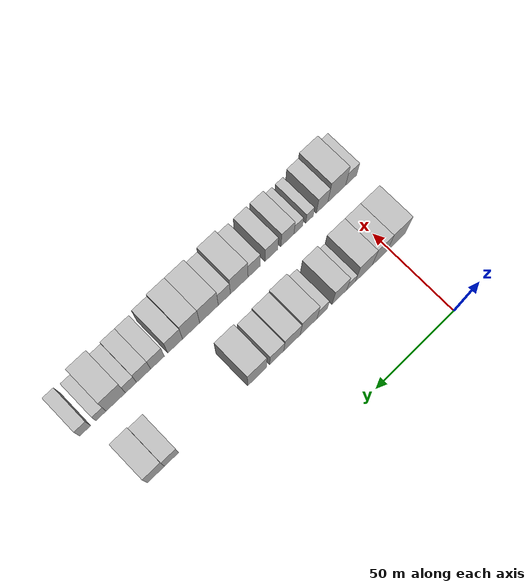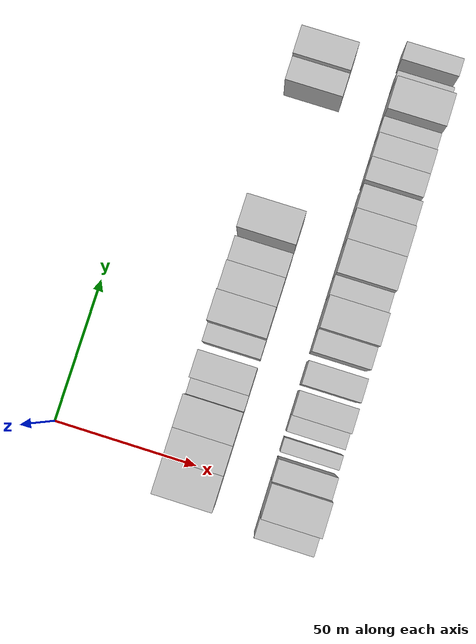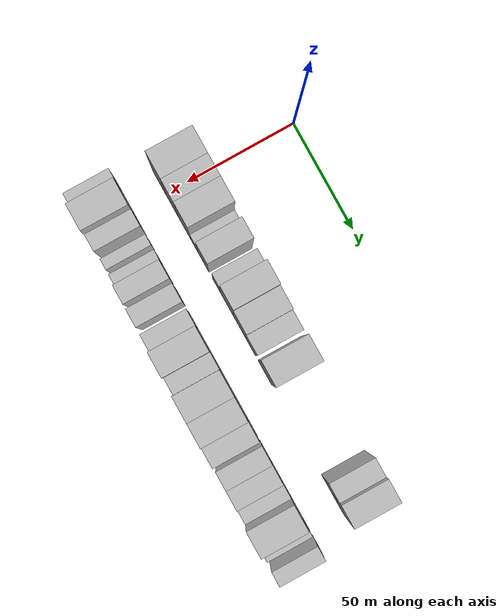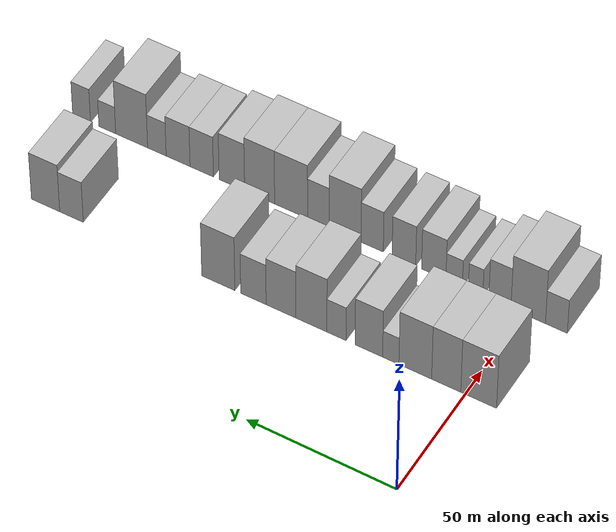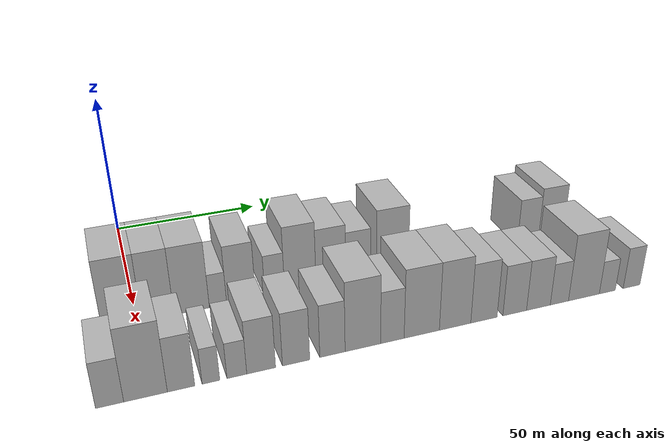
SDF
<sdf version="1.6">
 <world name="default">
  <model name="building_33">
   <static>1</static>
   <pose>50.0000 -4.4543 0 0.000000 0.000000 0.000000</pose>
   <link name="link">
    <pose>0 0 12.00 0 0 0</pose>
    <collision name="collision"><geometry><box><size>20.0000 11.8226 24.0000</size></box></geometry></collision>
    <visual name="visual">
     <cast_shadows>0</cast_shadows>
     <geometry><box><size>20.0000 11.8226 24.0000</size></box></geometry>
     <material>
      <script>
       <uri>model://HANNAS_wall/materials/scripts</uri>
       <uri>model://HANNAS_wall/materials/textures</uri>
       <name>vrc/HANNAS_wall</name>
      </script>
     </material>
    </visual>
   </link>
  </model>
  <model name="building_34">
   <static>1</static>
   <pose>50.0000 6.3101 0 0.000000 0.000000 0.000000</pose>
   <link name="link">
    <pose>0 0 12.00 0 0 0</pose>
    <collision name="collision"><geometry><box><size>20.0000 9.7060 24.0000</size></box></geometry></collision>
    <visual name="visual">
     <cast_shadows>0</cast_shadows>
     <geometry><box><size>20.0000 9.7060 24.0000</size></box></geometry>
     <material>
      <script>
       <uri>model://HANNAS_wall/materials/scripts</uri>
       <uri>model://HANNAS_wall/materials/textures</uri>
       <name>vrc/HANNAS_wall</name>
      </script>
     </material>
    </visual>
   </link>
  </model>
  <model name="building_35">
   <static>1</static>
   <pose>50.0000 16.6346 0 0.000000 0.000000 0.000000</pose>
   <link name="link">
    <pose>0 0 12.00 0 0 0</pose>
    <collision name="collision"><geometry><box><size>20.0000 10.9430 24.0000</size></box></geometry></collision>
    <visual name="visual">
     <cast_shadows>0</cast_shadows>
     <geometry><box><size>20.0000 10.9430 24.0000</size></box></geometry>
     <material>
      <script>
       <uri>model://HANNAS_wall/materials/scripts</uri>
       <uri>model://HANNAS_wall/materials/textures</uri>
       <name>vrc/HANNAS_wall</name>
      </script>
     </material>
    </visual>
   </link>
  </model>
  <model name="building_36">
   <static>1</static>
   <pose>50.0000 24.8381 0 0.000000 0.000000 0.000000</pose>
   <link name="link">
    <pose>0 0 6.00 0 0 0</pose>
    <collision name="collision"><geometry><box><size>20.0000 5.4641 12.0000</size></box></geometry></collision>
    <visual name="visual">
     <cast_shadows>0</cast_shadows>
     <geometry><box><size>20.0000 5.4641 12.0000</size></box></geometry>
     <material>
      <script>
       <uri>model://HANNAS_wall/materials/scripts</uri>
       <uri>model://HANNAS_wall/materials/textures</uri>
       <name>vrc/HANNAS_wall</name>
      </script>
     </material>
    </visual>
   </link>
  </model>
  <model name="building_37">
   <static>1</static>
   <pose>50.0000 32.2049 0 0.000000 0.000000 0.000000</pose>
   <link name="link">
    <pose>0 0 10.50 0 0 0</pose>
    <collision name="collision"><geometry><box><size>20.0000 9.2696 21.0000</size></box></geometry></collision>
    <visual name="visual">
     <cast_shadows>0</cast_shadows>
     <geometry><box><size>20.0000 9.2696 21.0000</size></box></geometry>
     <material>
      <script>
       <uri>model://HANNAS_wall/materials/scripts</uri>
       <uri>model://HANNAS_wall/materials/textures</uri>
       <name>vrc/HANNAS_wall</name>
      </script>
     </material>
    </visual>
   </link>
  </model>
  <model name="building_38">
   <static>1</static>
   <pose>50.0000 43.1029 0 0.000000 0.000000 0.000000</pose>
   <link name="link">
    <pose>0 0 7.50 0 0 0</pose>
    <collision name="collision"><geometry><box><size>20.0000 6.5264 15.0000</size></box></geometry></collision>
    <visual name="visual">
     <cast_shadows>0</cast_shadows>
     <geometry><box><size>20.0000 6.5264 15.0000</size></box></geometry>
     <material>
      <script>
       <uri>model://HANNAS_wall/materials/scripts</uri>
       <uri>model://HANNAS_wall/materials/textures</uri>
       <name>vrc/HANNAS_wall</name>
      </script>
     </material>
    </visual>
   </link>
  </model>
  <model name="building_39">
   <static>1</static>
   <pose>50.0000 51.6203 0 0.000000 0.000000 0.000000</pose>
   <link name="link">
    <pose>0 0 12.00 0 0 0</pose>
    <collision name="collision"><geometry><box><size>20.0000 10.5083 24.0000</size></box></geometry></collision>
    <visual name="visual">
     <cast_shadows>0</cast_shadows>
     <geometry><box><size>20.0000 10.5083 24.0000</size></box></geometry>
     <material>
      <script>
       <uri>model://HANNAS_wall/materials/scripts</uri>
       <uri>model://HANNAS_wall/materials/textures</uri>
       <name>vrc/HANNAS_wall</name>
      </script>
     </material>
    </visual>
   </link>
  </model>
  <model name="building_40">
   <static>1</static>
   <pose>50.0000 61.9553 0 0.000000 0.000000 0.000000</pose>
   <link name="link">
    <pose>0 0 10.50 0 0 0</pose>
    <collision name="collision"><geometry><box><size>20.0000 10.1617 21.0000</size></box></geometry></collision>
    <visual name="visual">
     <cast_shadows>0</cast_shadows>
     <geometry><box><size>20.0000 10.1617 21.0000</size></box></geometry>
     <material>
      <script>
       <uri>model://HANNAS_wall/materials/scripts</uri>
       <uri>model://HANNAS_wall/materials/textures</uri>
       <name>vrc/HANNAS_wall</name>
      </script>
     </material>
    </visual>
   </link>
  </model>
  <model name="building_41">
   <static>1</static>
   <pose>50.0000 71.3873 0 0.000000 0.000000 0.000000</pose>
   <link name="link">
    <pose>0 0 9.00 0 0 0</pose>
    <collision name="collision"><geometry><box><size>20.0000 8.7023 18.0000</size></box></geometry></collision>
    <visual name="visual">
     <cast_shadows>0</cast_shadows>
     <geometry><box><size>20.0000 8.7023 18.0000</size></box></geometry>
     <material>
      <script>
       <uri>model://HANNAS_wall/materials/scripts</uri>
       <uri>model://HANNAS_wall/materials/textures</uri>
       <name>vrc/HANNAS_wall</name>
      </script>
     </material>
    </visual>
   </link>
  </model>
  <model name="building_42">
   <static>1</static>
   <pose>50.0000 83.4444 0 0.000000 0.000000 0.000000</pose>
   <link name="link">
    <pose>0 0 12.00 0 0 0</pose>
    <collision name="collision"><geometry><box><size>20.0000 11.4119 24.0000</size></box></geometry></collision>
    <visual name="visual">
     <cast_shadows>0</cast_shadows>
     <geometry><box><size>20.0000 11.4119 24.0000</size></box></geometry>
     <material>
      <script>
       <uri>model://HANNAS_wall/materials/scripts</uri>
       <uri>model://HANNAS_wall/materials/textures</uri>
       <name>vrc/HANNAS_wall</name>
      </script>
     </material>
    </visual>
   </link>
  </model>
  <model name="building_43">
   <static>1</static>
   <pose>50.0000 134.6343 0 0.000000 0.000000 0.000000</pose>
   <link name="link">
    <pose>0 0 9.00 0 0 0</pose>
    <collision name="collision"><geometry><box><size>20.0000 8.3227 18.0000</size></box></geometry></collision>
    <visual name="visual">
     <cast_shadows>0</cast_shadows>
     <geometry><box><size>20.0000 8.3227 18.0000</size></box></geometry>
     <material>
      <script>
       <uri>model://HANNAS_wall/materials/scripts</uri>
       <uri>model://HANNAS_wall/materials/textures</uri>
       <name>vrc/HANNAS_wall</name>
      </script>
     </material>
    </visual>
   </link>
  </model>
  <model name="building_44">
   <static>1</static>
   <pose>50.0000 143.7940 0 0.000000 0.000000 0.000000</pose>
   <link name="link">
    <pose>0 0 10.50 0 0 0</pose>
    <collision name="collision"><geometry><box><size>20.0000 9.9968 21.0000</size></box></geometry></collision>
    <visual name="visual">
     <cast_shadows>0</cast_shadows>
     <geometry><box><size>20.0000 9.9968 21.0000</size></box></geometry>
     <material>
      <script>
       <uri>model://HANNAS_wall/materials/scripts</uri>
       <uri>model://HANNAS_wall/materials/textures</uri>
       <name>vrc/HANNAS_wall</name>
      </script>
     </material>
    </visual>
   </link>
  </model>
  <model name="building_90">
   <static>1</static>
   <pose>85.0000 -11.1632 0 0.000000 0.000000 0.000000</pose>
   <link name="link">
    <pose>0 0 7.50 0 0 0</pose>
    <collision name="collision"><geometry><box><size>20.0000 7.2867 15.0000</size></box></geometry></collision>
    <visual name="visual">
     <cast_shadows>0</cast_shadows>
     <geometry><box><size>20.0000 7.2867 15.0000</size></box></geometry>
     <material>
      <script>
       <uri>model://HANNAS_wall/materials/scripts</uri>
       <uri>model://HANNAS_wall/materials/textures</uri>
       <name>vrc/HANNAS_wall</name>
      </script>
     </material>
    </visual>
   </link>
  </model>
  <model name="building_91">
   <static>1</static>
   <pose>85.0000 -1.7479 0 0.000000 0.000000 0.000000</pose>
   <link name="link">
    <pose>0 0 12.00 0 0 0</pose>
    <collision name="collision"><geometry><box><size>20.0000 11.5440 24.0000</size></box></geometry></collision>
    <visual name="visual">
     <cast_shadows>0</cast_shadows>
     <geometry><box><size>20.0000 11.5440 24.0000</size></box></geometry>
     <material>
      <script>
       <uri>model://HANNAS_wall/materials/scripts</uri>
       <uri>model://HANNAS_wall/materials/textures</uri>
       <name>vrc/HANNAS_wall</name>
      </script>
     </material>
    </visual>
   </link>
  </model>
  <model name="building_92">
   <static>1</static>
   <pose>85.0000 7.7418 0 0.000000 0.000000 0.000000</pose>
   <link name="link">
    <pose>0 0 9.00 0 0 0</pose>
    <collision name="collision"><geometry><box><size>20.0000 7.4354 18.0000</size></box></geometry></collision>
    <visual name="visual">
     <cast_shadows>0</cast_shadows>
     <geometry><box><size>20.0000 7.4354 18.0000</size></box></geometry>
     <material>
      <script>
       <uri>model://HANNAS_wall/materials/scripts</uri>
       <uri>model://HANNAS_wall/materials/textures</uri>
       <name>vrc/HANNAS_wall</name>
      </script>
     </material>
    </visual>
   </link>
  </model>
  <model name="building_93">
   <static>1</static>
   <pose>85.0000 15.9081 0 0.000000 0.000000 0.000000</pose>
   <link name="link">
    <pose>0 0 6.00 0 0 0</pose>
    <collision name="collision"><geometry><box><size>20.0000 4.8971 12.0000</size></box></geometry></collision>
    <visual name="visual">
     <cast_shadows>0</cast_shadows>
     <geometry><box><size>20.0000 4.8971 12.0000</size></box></geometry>
     <material>
      <script>
       <uri>model://HANNAS_wall/materials/scripts</uri>
       <uri>model://HANNAS_wall/materials/textures</uri>
       <name>vrc/HANNAS_wall</name>
      </script>
     </material>
    </visual>
   </link>
  </model>
  <model name="building_94">
   <static>1</static>
   <pose>85.0000 23.1462 0 0.000000 0.000000 0.000000</pose>
   <link name="link">
    <pose>0 0 6.00 0 0 0</pose>
    <collision name="collision"><geometry><box><size>20.0000 5.5792 12.0000</size></box></geometry></collision>
    <visual name="visual">
     <cast_shadows>0</cast_shadows>
     <geometry><box><size>20.0000 5.5792 12.0000</size></box></geometry>
     <material>
      <script>
       <uri>model://HANNAS_wall/materials/scripts</uri>
       <uri>model://HANNAS_wall/materials/textures</uri>
       <name>vrc/HANNAS_wall</name>
      </script>
     </material>
    </visual>
   </link>
  </model>
  <model name="building_95">
   <static>1</static>
   <pose>85.0000 30.0703 0 0.000000 0.000000 0.000000</pose>
   <link name="link">
    <pose>0 0 9.00 0 0 0</pose>
    <collision name="collision"><geometry><box><size>20.0000 8.2689 18.0000</size></box></geometry></collision>
    <visual name="visual">
     <cast_shadows>0</cast_shadows>
     <geometry><box><size>20.0000 8.2689 18.0000</size></box></geometry>
     <material>
      <script>
       <uri>model://HANNAS_wall/materials/scripts</uri>
       <uri>model://HANNAS_wall/materials/textures</uri>
       <name>vrc/HANNAS_wall</name>
      </script>
     </material>
    </visual>
   </link>
  </model>
  <model name="building_96">
   <static>1</static>
   <pose>85.0000 40.2234 0 0.000000 0.000000 0.000000</pose>
   <link name="link">
    <pose>0 0 9.00 0 0 0</pose>
    <collision name="collision"><geometry><box><size>20.0000 8.0373 18.0000</size></box></geometry></collision>
    <visual name="visual">
     <cast_shadows>0</cast_shadows>
     <geometry><box><size>20.0000 8.0373 18.0000</size></box></geometry>
     <material>
      <script>
       <uri>model://HANNAS_wall/materials/scripts</uri>
       <uri>model://HANNAS_wall/materials/textures</uri>
       <name>vrc/HANNAS_wall</name>
      </script>
     </material>
    </visual>
   </link>
  </model>
  <model name="building_97">
   <static>1</static>
   <pose>85.0000 51.0671 0 0.000000 0.000000 0.000000</pose>
   <link name="link">
    <pose>0 0 9.00 0 0 0</pose>
    <collision name="collision"><geometry><box><size>20.0000 7.6502 18.0000</size></box></geometry></collision>
    <visual name="visual">
     <cast_shadows>0</cast_shadows>
     <geometry><box><size>20.0000 7.6502 18.0000</size></box></geometry>
     <material>
      <script>
       <uri>model://HANNAS_wall/materials/scripts</uri>
       <uri>model://HANNAS_wall/materials/textures</uri>
       <name>vrc/HANNAS_wall</name>
      </script>
     </material>
    </visual>
   </link>
  </model>
  <model name="building_98">
   <static>1</static>
   <pose>85.0000 60.3698 0 0.000000 0.000000 0.000000</pose>
   <link name="link">
    <pose>0 0 12.00 0 0 0</pose>
    <collision name="collision"><geometry><box><size>20.0000 10.9551 24.0000</size></box></geometry></collision>
    <visual name="visual">
     <cast_shadows>0</cast_shadows>
     <geometry><box><size>20.0000 10.9551 24.0000</size></box></geometry>
     <material>
      <script>
       <uri>model://HANNAS_wall/materials/scripts</uri>
       <uri>model://HANNAS_wall/materials/textures</uri>
       <name>vrc/HANNAS_wall</name>
      </script>
     </material>
    </visual>
   </link>
  </model>
  <model name="building_99">
   <static>1</static>
   <pose>85.0000 69.5813 0 0.000000 0.000000 0.000000</pose>
   <link name="link">
    <pose>0 0 9.00 0 0 0</pose>
    <collision name="collision"><geometry><box><size>20.0000 7.4679 18.0000</size></box></geometry></collision>
    <visual name="visual">
     <cast_shadows>0</cast_shadows>
     <geometry><box><size>20.0000 7.4679 18.0000</size></box></geometry>
     <material>
      <script>
       <uri>model://HANNAS_wall/materials/scripts</uri>
       <uri>model://HANNAS_wall/materials/textures</uri>
       <name>vrc/HANNAS_wall</name>
      </script>
     </material>
    </visual>
   </link>
  </model>
  <model name="building_100">
   <static>1</static>
   <pose>85.0000 79.0236 0 0.000000 0.000000 0.000000</pose>
   <link name="link">
    <pose>0 0 12.00 0 0 0</pose>
    <collision name="collision"><geometry><box><size>20.0000 11.4165 24.0000</size></box></geometry></collision>
    <visual name="visual">
     <cast_shadows>0</cast_shadows>
     <geometry><box><size>20.0000 11.4165 24.0000</size></box></geometry>
     <material>
      <script>
       <uri>model://HANNAS_wall/materials/scripts</uri>
       <uri>model://HANNAS_wall/materials/textures</uri>
       <name>vrc/HANNAS_wall</name>
      </script>
     </material>
    </visual>
   </link>
  </model>
  <model name="building_101">
   <static>1</static>
   <pose>85.0000 89.9531 0 0.000000 0.000000 0.000000</pose>
   <link name="link">
    <pose>0 0 12.00 0 0 0</pose>
    <collision name="collision"><geometry><box><size>20.0000 10.4426 24.0000</size></box></geometry></collision>
    <visual name="visual">
     <cast_shadows>0</cast_shadows>
     <geometry><box><size>20.0000 10.4426 24.0000</size></box></geometry>
     <material>
      <script>
       <uri>model://HANNAS_wall/materials/scripts</uri>
       <uri>model://HANNAS_wall/materials/textures</uri>
       <name>vrc/HANNAS_wall</name>
      </script>
     </material>
    </visual>
   </link>
  </model>
  <model name="building_102">
   <static>1</static>
   <pose>85.0000 99.6413 0 0.000000 0.000000 0.000000</pose>
   <link name="link">
    <pose>0 0 10.50 0 0 0</pose>
    <collision name="collision"><geometry><box><size>20.0000 8.9336 21.0000</size></box></geometry></collision>
    <visual name="visual">
     <cast_shadows>0</cast_shadows>
     <geometry><box><size>20.0000 8.9336 21.0000</size></box></geometry>
     <material>
      <script>
       <uri>model://HANNAS_wall/materials/scripts</uri>
       <uri>model://HANNAS_wall/materials/textures</uri>
       <name>vrc/HANNAS_wall</name>
      </script>
     </material>
    </visual>
   </link>
  </model>
  <model name="building_103">
   <static>1</static>
   <pose>85.0000 110.2249 0 0.000000 0.000000 0.000000</pose>
   <link name="link">
    <pose>0 0 9.00 0 0 0</pose>
    <collision name="collision"><geometry><box><size>20.0000 8.2338 18.0000</size></box></geometry></collision>
    <visual name="visual">
     <cast_shadows>0</cast_shadows>
     <geometry><box><size>20.0000 8.2338 18.0000</size></box></geometry>
     <material>
      <script>
       <uri>model://HANNAS_wall/materials/scripts</uri>
       <uri>model://HANNAS_wall/materials/textures</uri>
       <name>vrc/HANNAS_wall</name>
      </script>
     </material>
    </visual>
   </link>
  </model>
  <model name="building_104">
   <static>1</static>
   <pose>85.0000 118.5637 0 0.000000 0.000000 0.000000</pose>
   <link name="link">
    <pose>0 0 9.00 0 0 0</pose>
    <collision name="collision"><geometry><box><size>20.0000 8.4438 18.0000</size></box></geometry></collision>
    <visual name="visual">
     <cast_shadows>0</cast_shadows>
     <geometry><box><size>20.0000 8.4438 18.0000</size></box></geometry>
     <material>
      <script>
       <uri>model://HANNAS_wall/materials/scripts</uri>
       <uri>model://HANNAS_wall/materials/textures</uri>
       <name>vrc/HANNAS_wall</name>
      </script>
     </material>
    </visual>
   </link>
  </model>
  <model name="building_105">
   <static>1</static>
   <pose>85.0000 126.0707 0 0.000000 0.000000 0.000000</pose>
   <link name="link">
    <pose>0 0 7.50 0 0 0</pose>
    <collision name="collision"><geometry><box><size>20.0000 6.5702 15.0000</size></box></geometry></collision>
    <visual name="visual">
     <cast_shadows>0</cast_shadows>
     <geometry><box><size>20.0000 6.5702 15.0000</size></box></geometry>
     <material>
      <script>
       <uri>model://HANNAS_wall/materials/scripts</uri>
       <uri>model://HANNAS_wall/materials/textures</uri>
       <name>vrc/HANNAS_wall</name>
      </script>
     </material>
    </visual>
   </link>
  </model>
  <model name="building_106">
   <static>1</static>
   <pose>85.0000 135.0469 0 0.000000 0.000000 0.000000</pose>
   <link name="link">
    <pose>0 0 12.00 0 0 0</pose>
    <collision name="collision"><geometry><box><size>20.0000 11.3823 24.0000</size></box></geometry></collision>
    <visual name="visual">
     <cast_shadows>0</cast_shadows>
     <geometry><box><size>20.0000 11.3823 24.0000</size></box></geometry>
     <material>
      <script>
       <uri>model://HANNAS_wall/materials/scripts</uri>
       <uri>model://HANNAS_wall/materials/textures</uri>
       <name>vrc/HANNAS_wall</name>
      </script>
     </material>
    </visual>
   </link>
  </model>
  <model name="building_107">
   <static>1</static>
   <pose>85.0000 143.7353 0 0.000000 0.000000 0.000000</pose>
   <link name="link">
    <pose>0 0 6.00 0 0 0</pose>
    <collision name="collision"><geometry><box><size>20.0000 5.9945 12.0000</size></box></geometry></collision>
    <visual name="visual">
     <cast_shadows>0</cast_shadows>
     <geometry><box><size>20.0000 5.9945 12.0000</size></box></geometry>
     <material>
      <script>
       <uri>model://HANNAS_wall/materials/scripts</uri>
       <uri>model://HANNAS_wall/materials/textures</uri>
       <name>vrc/HANNAS_wall</name>
      </script>
     </material>
    </visual>
   </link>
  </model>
  <model name="building_108">
   <static>1</static>
   <pose>85.0000 152.9280 0 0.000000 0.000000 0.000000</pose>
   <link name="link">
    <pose>0 0 7.50 0 0 0</pose>
    <collision name="collision"><geometry><box><size>20.0000 6.3908 15.0000</size></box></geometry></collision>
    <visual name="visual">
     <cast_shadows>0</cast_shadows>
     <geometry><box><size>20.0000 6.3908 15.0000</size></box></geometry>
     <material>
      <script>
       <uri>model://HANNAS_wall/materials/scripts</uri>
       <uri>model://HANNAS_wall/materials/textures</uri>
       <name>vrc/HANNAS_wall</name>
      </script>
     </material>
    </visual>
   </link>
  </model>
 </world>
</sdf>
